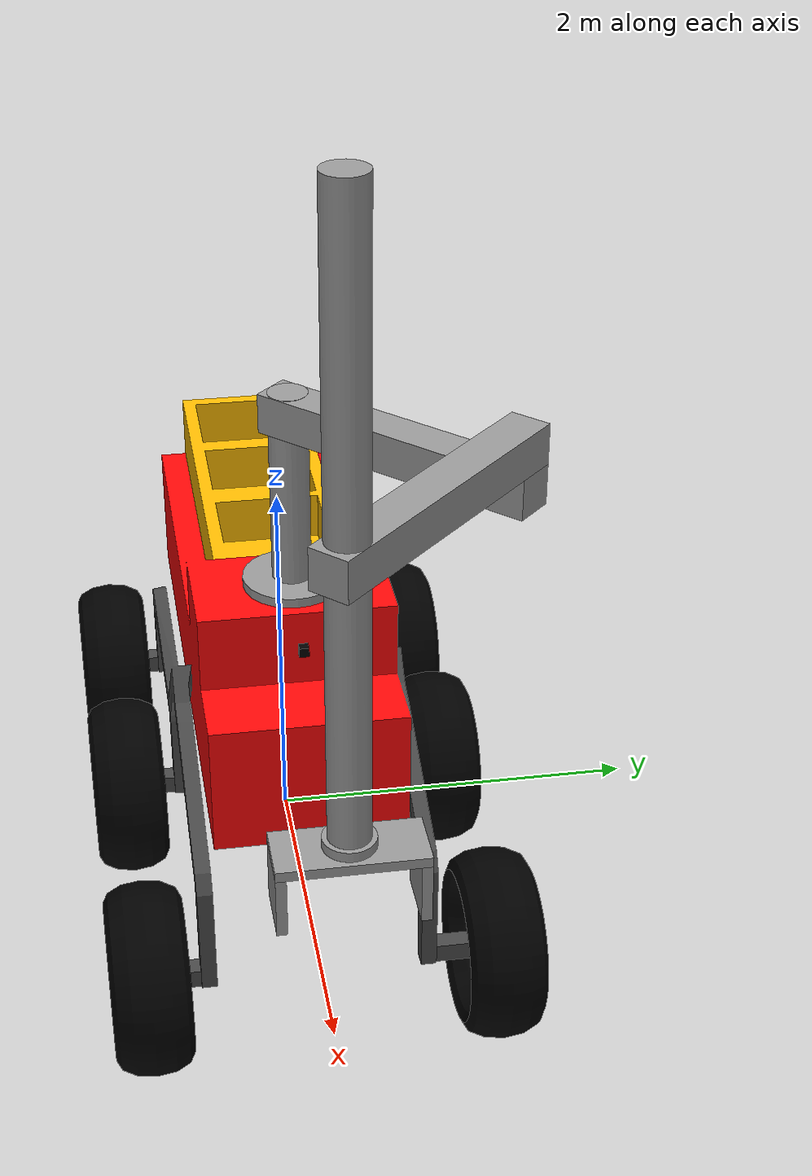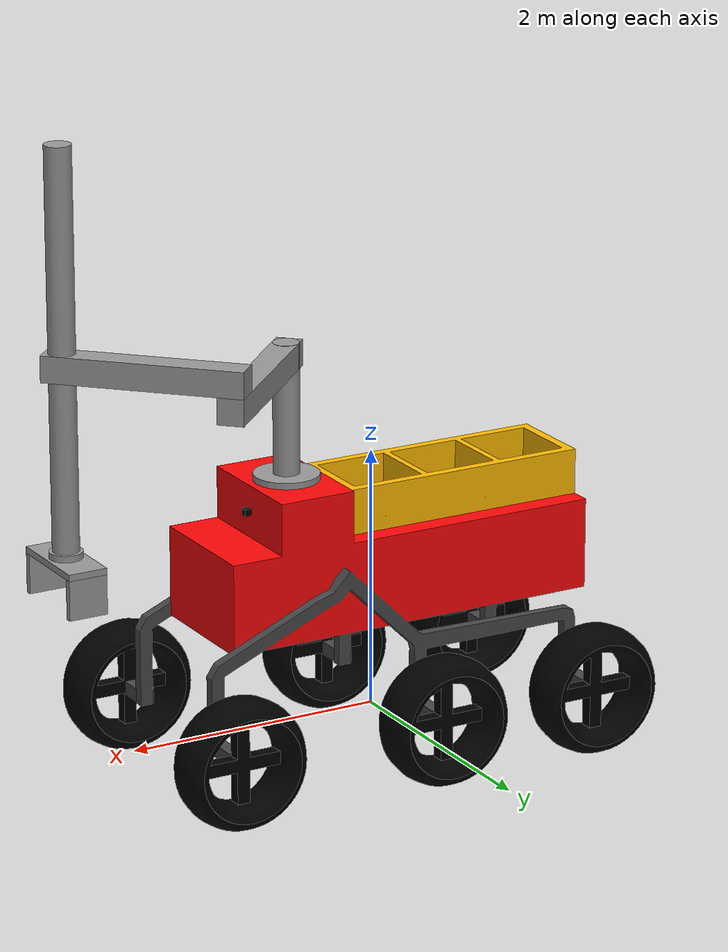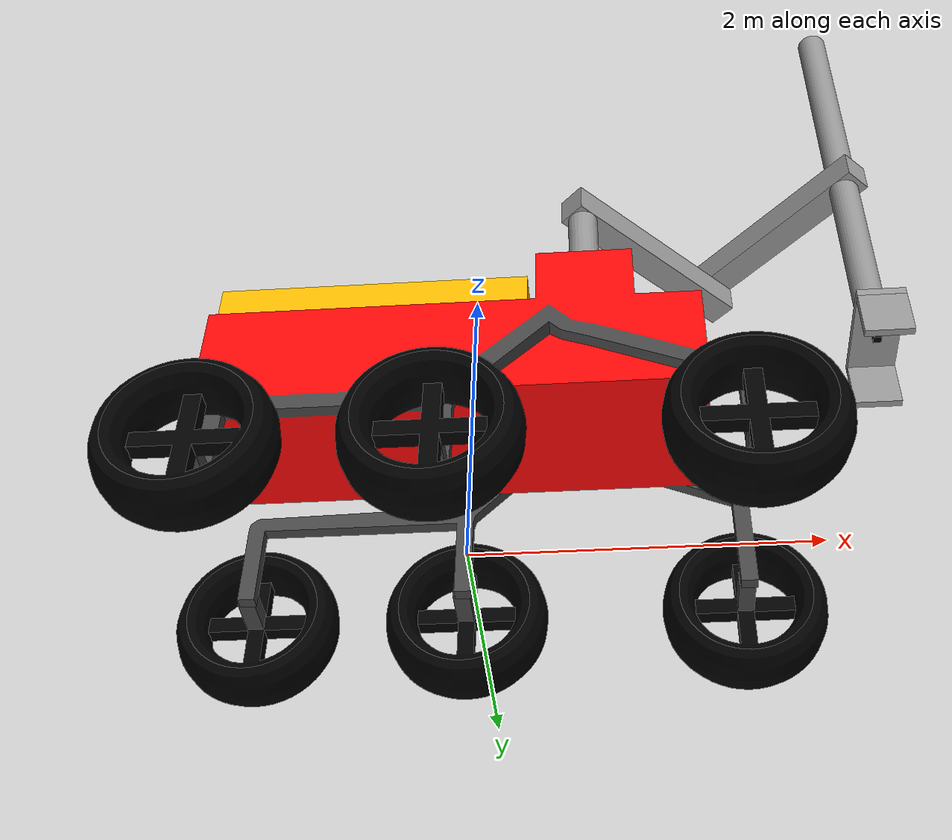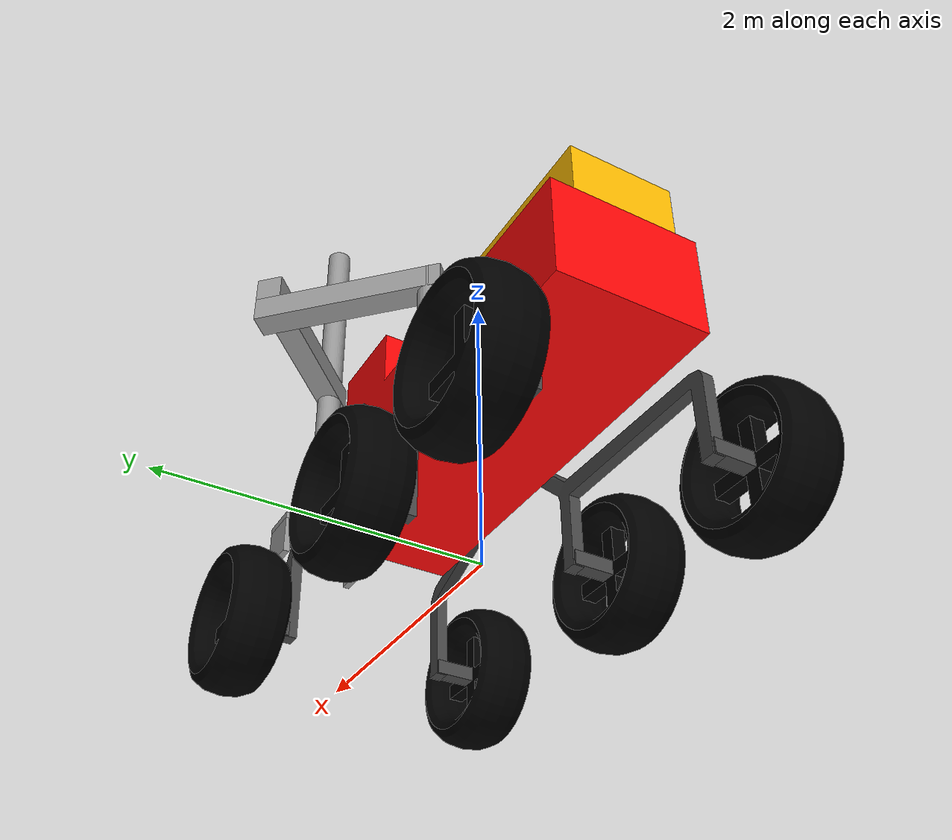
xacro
<?xml version="1.0"?>
<!-- created with Phobos 1.0.1 "Capricious Choutengan" -->
<robot name="robot" xmlns:xacro="http://wiki.ros.org/xacro">

  <xacro:include filename="$(find rover_description)/urdf/base/rover_base.urdf.xacro"/>
  <xacro:include filename="$(find rover_description)/urdf/base/envase.urdf.xacro"/>
  <xacro:include filename="$(find rover_description)/urdf/wheels/rover_wheel.urdf.xacro"/>
  <xacro:include filename="$(find rover_description)/urdf/wheels/axis.urdf.xacro"/>
  <xacro:include filename="$(find rover_description)/urdf/arm/arm.urdf.xacro"/>
  <xacro:include filename="$(find rover_description)/urdf/sensors/imu.urdf.xacro"/>
  <xacro:include filename="$(find rover_description)/urdf/sensors/camera.urdf.xacro"/>
  <xacro:include filename="$(find rover_description)/urdf/utils/arm_plugins.urdf.xacro" />
  <xacro:include filename="$(find rover_description)/urdf/utils/ros2_control.urdf.xacro" />

  <xacro:property name="Front_wheel_offset_x" value="1.6"/>
  <xacro:property name="Middle_wheel_offset_x" value="-0.1"/>
  <xacro:property name="Back_wheel_offset_x" value="-1.4"/>
  <xacro:property name="Axis_offset_y" value="0.70"/>
  <xacro:property name="Axis_offset_z" value="-1.05"/>
  <xacro:property name="Axis_to_wheel_offset_y" value="0.2"/>

  <!-- BASE -->
  <xacro:robot_base/>

  <!-- ENVASE -->
  <xacro:Envase parent="base_link">
    <origin rpy="0.0 0.0 0.0" xyz="-0.61197 -0.03002 0.34359"/>
  </xacro:Envase>

  <!-- AXIS -->
  <xacro:Axis prefix="front_right" parent="base_link">
    <origin xyz="${Front_wheel_offset_x} ${Axis_offset_y} ${Axis_offset_z}" rpy="0 0 0"/>
  </xacro:Axis>

  <xacro:Axis prefix="middle_right" parent="base_link">
    <origin xyz="${Middle_wheel_offset_x} ${Axis_offset_y} ${Axis_offset_z}" rpy="0 0 0"/>
  </xacro:Axis>

  <xacro:Axis prefix="back_right" parent="base_link">
    <origin xyz="${Back_wheel_offset_x} ${Axis_offset_y} ${Axis_offset_z}" rpy="0 0 0"/>
  </xacro:Axis>

  <xacro:Axis prefix="front_left" parent="base_link">
    <origin xyz="${Front_wheel_offset_x} -${Axis_offset_y} ${Axis_offset_z}" rpy="0 0 0"/>
  </xacro:Axis>

  <xacro:Axis prefix="middle_left" parent="base_link">
    <origin xyz="${Middle_wheel_offset_x} -${Axis_offset_y} ${Axis_offset_z}" rpy="0 0 0"/>
  </xacro:Axis>

  <xacro:Axis prefix="back_left" parent="base_link">
    <origin xyz="${Back_wheel_offset_x} -${Axis_offset_y} ${Axis_offset_z}" rpy="0 0 0"/>
  </xacro:Axis>

  <!-- WHEELS -->
  <xacro:rover_wheel prefix="front_right" parent="front_right_axis_link" mesh_file="Cube.006.dae">
    <origin xyz="0 ${Axis_to_wheel_offset_y} 0" rpy="${pi/2} 0 0"/>
  </xacro:rover_wheel>

  <xacro:rover_wheel prefix="middle_right" parent="middle_right_axis_link" mesh_file="Cube.006.dae">
    <origin xyz="0 ${Axis_to_wheel_offset_y} 0" rpy="${pi/2} 0 0"/>
  </xacro:rover_wheel>

  <xacro:rover_wheel prefix="back_right" parent="back_right_axis_link" mesh_file="Cube.006.dae">
    <origin xyz="0 ${Axis_to_wheel_offset_y} 0" rpy="${pi/2} 0 0"/>
  </xacro:rover_wheel>

  <xacro:rover_wheel prefix="front_left" parent="front_left_axis_link" mesh_file="Cube.008.dae">
    <origin xyz="0 -${Axis_to_wheel_offset_y} 0" rpy="${pi/2} 0 0"/>
  </xacro:rover_wheel>

  <xacro:rover_wheel prefix="middle_left" parent="middle_left_axis_link" mesh_file="Cube.008.dae">
    <origin xyz="0 -${Axis_to_wheel_offset_y} 0" rpy="${pi/2} 0 0"/>
  </xacro:rover_wheel>

  <xacro:rover_wheel prefix="back_left" parent="back_left_axis_link" mesh_file="Cube.008.dae">
    <origin xyz="0 -${Axis_to_wheel_offset_y} 0" rpy="${pi/2} 0 0"/>
  </xacro:rover_wheel>

  <!-- Fricción para ruedas izquierdas -->
  <gazebo reference="front_left_wheel_link"><mu1>0.1</mu1><mu2>0.1</mu2></gazebo>
  <gazebo reference="middle_left_wheel_link"><mu1>1.0</mu1><mu2>1.0</mu2></gazebo>
  <gazebo reference="back_left_wheel_link"><mu1>0.1</mu1><mu2>0.1</mu2></gazebo>

  <!-- Fricción para ruedas derechas -->
  <gazebo reference="front_right_wheel_link"><mu1>0.1</mu1><mu2>0.1</mu2></gazebo>
  <gazebo reference="middle_right_wheel_link"><mu1>1.0</mu1><mu2>1.0</mu2></gazebo>
  <gazebo reference="back_right_wheel_link"><mu1>0.1</mu1><mu2>0.1</mu2></gazebo>

  <!-- ARM -->
  <xacro:scara_arm parent="base_link">
    <origin xyz="0.71003 -0.01046 0.71815" rpy="0 0 0"/>
  </xacro:scara_arm>

  <!-- SENSORS -->
  <xacro:sensor_imu prefix="imu" parent="base_link">
    <!-- Aquí defines la posición física de la IMU respecto al parent -->
    <origin xyz="1.0 0.0 0.5" rpy="0 0 0"/>
  </xacro:sensor_imu>

  <xacro:sensor_camera
    frame_prefix="front"
    parent="base_link"
    horizontal_fov="90"
    video_width="640"
    video_height="480">
    <origin xyz="1.05 0 0.5" rpy="0 0 0"/>
  </xacro:sensor_camera>

  <xacro:sensor_camera
      frame_prefix="gripper"
      parent="base_gripper_link"
      horizontal_fov="60"
      video_width="640"
      video_height="480">
    <origin xyz="0 0 -0.05" rpy="0 1.5708 0"/>
  </xacro:sensor_camera>

  <!-- Controlador Gazebo ros2  -->
  <xacro:arg name="config_controllers" default="$(find rover_description)/config/rover_controllers.yaml"/>
  <xacro:arg name="update_rate" default="20"/>

  <!-- Esta es la llamada que activa todo el sistema de control -->
  <xacro:ros2_control/>

</robot>

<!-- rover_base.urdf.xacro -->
<robot xmlns:xacro="http://wiki.ros.org/xacro">

  <xacro:macro name="robot_base">

    <link name="base_footprint"/>

    <!-- Unión fija entre el suelo y el chasis -->
    <joint name="base_footprint_joint" type="fixed">
      <parent link="base_footprint"/>
      <child link="base_link"/>
      <origin xyz="0 0 1.2" rpy="0 0 0"/>
    </joint>

    <link name="base_link">
      <collision name="chasis_collision">
        <origin rpy="0.00000 0.00000 0.00000" xyz="0.05491 -0.59562 -0.76184"/>
        <geometry>
          <box size="3.20000 0.10000 0.90000"/>
        </geometry>
      </collision>
      <collision name="chasis_collision.001">
        <origin rpy="0.00000 0.00000 0.00000" xyz="-0.08278 -0.02106 -0.05185"/>
        <geometry>
          <box size="3.00000 1.00000 0.70000"/>
        </geometry>
      </collision>
      <collision name="chasis_collision.002">
        <origin rpy="0.00000 0.00000 0.00000" xyz="0.71391 -0.02883 0.49815"/>
        <geometry>
          <box size="0.60000 1.00000 0.40000"/>
        </geometry>
      </collision>
      <collision name="chasis_collision.003">
        <origin rpy="0.00000 0.00000 0.00000" xyz="0.05491 0.56235 -0.76184"/>
        <geometry>
          <box size="3.20000 0.10000 0.90000"/>
        </geometry>
      </collision>
      <inertial>
        <inertia ixx="155.51313" ixy="0.29579" ixz="-3.95758" iyy="456.61426" iyz="-0.74765" izz="404.59665"/>
        <origin rpy="0.00000 0.00000 0.00000" xyz="0.07609 -0.02047 -0.07797"/>
        <mass value="100.00000"/>
      </inertial>
      <visual name="chasis">
        <origin rpy="0.00000 -0.78540 0.00000" xyz="0.00000 0.00000 0.00000"/>
        <geometry>
          <mesh filename="file://$(find rover_description)/meshes/dae/Cube.011.dae" scale="0.05000 0.05250 0.05000"/>
        </geometry>
      </visual>
    </link>
  </xacro:macro>
</robot>

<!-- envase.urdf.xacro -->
<robot xmlns:xacro="http://wiki.ros.org/xacro">

  <xacro:macro name="Envase" params="parent *origin">

    <joint name="Envase_link_joint" type="fixed">
      <xacro:insert_block name="origin" />
      <parent link="${parent}"/>
      <child link="Envase_link"/>
    </joint>

    <link name="Envase_link">
      <collision name="envase_collision">
      <origin rpy="0.00000 0.00000 0.00000" xyz="-0.00388 0.31708 0.12258"/>
      <geometry>
        <box size="1.94000 0.07000 0.35000"/>
      </geometry>
      </collision>
      <collision name="envase_collision.001">
        <origin rpy="0.00000 0.00000 0.00000" xyz="-0.00388 -0.30814 0.12258"/>
        <geometry>
          <box size="1.94000 0.07000 0.35000"/>
        </geometry>
      </collision>
      <collision name="envase_collision.002">
        <origin rpy="0.00000 0.00000 0.00000" xyz="-0.93970 0.00532 0.12258"/>
        <geometry>
          <box size="0.07000 0.55000 0.35000"/>
        </geometry>
      </collision>
      <collision name="envase_collision.003">
        <origin rpy="0.00000 0.00000 0.00000" xyz="-0.32024 0.00532 0.12258"/>
        <geometry>
          <box size="0.05000 0.55000 0.35000"/>
        </geometry>
      </collision>
      <collision name="envase_collision.004">
        <origin rpy="0.00000 0.00000 0.00000" xyz="0.30432 0.00532 0.12258"/>
        <geometry>
          <box size="0.05000 0.55000 0.35000"/>
        </geometry>
      </collision>
      <collision name="envase_collision.005">
        <origin rpy="0.00000 0.00000 0.00000" xyz="0.93254 0.00532 0.12258"/>
        <geometry>
          <box size="0.07000 0.55000 0.35000"/>
        </geometry>
      </collision>
      <inertial>
        <inertia ixx="1.39088" ixy="-0.00000" ixz="0.00231" iyy="9.35663" iyz="0.00000" izz="10.27551"/>
        <origin rpy="0.00000 0.00000 0.00000" xyz="-0.00182 0.00000 0.14544"/>
        <mass value="30.00000"/>
      </inertial>
      <visual name="Envase">
        <origin rpy="0.00000 0.00000 0.00000" xyz="0.00000 0.00471 0.00000"/>
        <geometry>
          <mesh filename="file://$(find rover_description)/meshes/dae/Cube.020.dae" scale="0.97000 0.35000 0.05000"/>
        </geometry>
      </visual>
    </link>
  </xacro:macro>
</robot>

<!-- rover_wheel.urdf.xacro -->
<robot xmlns:xacro="http://wiki.ros.org/xacro">

  <xacro:macro name="rover_wheel" params="prefix parent mesh_file *origin">

    <joint name="${prefix}_wheel_joint" type="continuous">
      <xacro:insert_block name="origin" />
      <parent link="${parent}"/>
      <child link="${prefix}_wheel_link"/>
      <axis xyz="0 0 -1"/> <limit effort="500.0" velocity="10.0"/>
    </joint>

    <link name="${prefix}_wheel_link">
      <visual name="${prefix}_visual">
        <origin rpy="-1.57080 0.00000 0.00000" xyz="0.00000 0.00000 0.00000"/>
        <geometry>
          <mesh filename="file://$(find rover_description)/meshes/dae/${mesh_file}" scale="0.05000 0.05000 0.12500"/>
        </geometry>
      </visual>

      <collision name="${prefix}_collision">
        <origin rpy="-1.57080 0.00000 0.00000" xyz="0.00000 0.00000 0.00000"/>
        <geometry>
          <mesh filename="file://$(find rover_description)/meshes/dae/${mesh_file}" scale="0.05000 0.05000 0.12500"/>
        </geometry>
      </collision>

      <inertial>
        <mass value="20.0"/>
        <origin rpy="0 0 0" xyz="0 0 0.00008"/>
        <inertia ixx="1.29049" ixy="0.0" ixz="0.0" iyy="2.27308" iyz="0.0" izz="1.29044"/>
      </inertial>
    </link>

    <gazebo reference="${prefix}_wheel_link">
      <mu1>0.01</mu1>
      <mu2>0.01</mu2>
      <kp>1000000.0</kp>
      <kd>100.0</kd>
      <minDepth>0.001</minDepth>
      <maxVel>0.1</maxVel>
      <fdir1>1 0 0</fdir1>
    </gazebo>

  </xacro:macro>
</robot>

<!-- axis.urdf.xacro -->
<robot xmlns:xacro="http://wiki.ros.org/xacro">

  <xacro:macro name="Axis" params="prefix parent *origin">
  <joint name="${prefix}_Axis_link_joint" type="fixed">
    <xacro:insert_block name="origin" />
    <parent link="${parent}"/>
    <child link="${prefix}_axis_link"/>
  </joint>

  <link name="${prefix}_axis_link">
    <collision name="${prefix}_axis_collision">
      <origin rpy="0.00000 0.00000 0.00000" xyz="0.00000 0.00000 0.00000"/>
      <geometry>
        <mesh filename="package://rover_description/meshes/dae/Cube.001.dae" scale="0.05000 0.13500 0.05000"/>
      </geometry>
    </collision>
    <inertial>
      <inertia ixx="0.03454" ixy="0.00000" ixz="0.00000" iyy="0.00833" iyz="0.00000" izz="0.03454"/>
      <origin rpy="0.00000 0.00000 0.00000" xyz="0.00000 0.00000 0.00000"/>
      <mass value="5.00000"/>
    </inertial>
    <visual name="${prefix}_axis_visual">
      <material name="Material.014"/>
      <origin rpy="0.00000 0.00000 0.00000" xyz="0.00000 0.00000 0.00000"/>
      <geometry>
        <box size="0.10000 0.27000 0.10000"/>
      </geometry>
    </visual>
  </link>

  </xacro:macro>

  <material name="Material.014">
    <color rgba="0.28235 0.28235 0.28235 1.00000"/>
  </material>
</robot>

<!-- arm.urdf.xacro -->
<robot xmlns:xacro="http://wiki.ros.org/xacro">

  <xacro:macro name="scara_arm" params="parent *origin">

    <joint name="scara_base_link_joint" type="fixed">
      <xacro:insert_block name="origin" />
      <parent link="${parent}"/>
      <child link="scara_base_link"/>
    </joint>

    <link name="scara_base_link">
      <inertial>
        <inertia ixx="0.07917" ixy="0.00000" ixz="0.00000" iyy="0.07917" iyz="0.00000" izz="0.15625"/>
        <origin rpy="0 0 0" xyz="0 0 0"/>
        <mass value="5.0"/>
      </inertial>
      <collision name="scara_base_collision">
        <geometry>
          <cylinder radius="0.25" length="0.05"/>
        </geometry>
      </collision>
      <visual name="scara_base">
        <material name="Material.007"/>
        <geometry>
          <cylinder radius="0.25" length="0.05"/>
        </geometry>
      </visual>
    </link>

    <!-- Articulación 1: Rotación Hombro -->
    <joint name="scara_arm_1_link_joint" type="revolute">
      <limit lower="-2.27" upper="4.17" effort="1000.0" velocity="10.0" acceleration="5.0"/>
      <origin xyz="0.0 0.0 0.52512" rpy="0 0 0"/>
      <parent link="scara_base_link"/>
      <child link="scara_arm_1_link"/>
      <axis xyz="0 0 1"/>
    </joint>

    <link name="scara_arm_1_link">
      <inertial>
        <inertia ixx="0.42083" ixy="0.0" ixz="0.0" iyy="0.42083" iyz="0.0" izz="0.025"/>
        <origin rpy="0 0 0" xyz="0 0 0"/>
        <mass value="5.0"/>
      </inertial>
      <collision>
        <geometry>
          <cylinder radius="0.1" length="1.0"/>
        </geometry>
      </collision>
      <visual>
        <material name="Material.007"/>
        <geometry>
          <cylinder radius="0.1" length="1.0"/>
        </geometry>
      </visual>
    </link>

    <joint name="scara_arm_2_link_joint" type="fixed">
      <origin xyz="0.45675 0.45526 0.39791" rpy="0 0 -0.7854"/>
      <parent link="scara_arm_1_link"/>
      <child link="scara_arm_2_link"/>
    </joint>

    <link name="scara_arm_2_link">
      <inertial>
        <inertia ixx="0.95417" ixy="0.0" ixz="0.0" iyy="0.03333" iyz="0.0" izz="0.95417"/>
        <origin rpy="0 0 0" xyz="0 0 0"/>
        <mass value="5.0"/>
      </inertial>
      <collision>
        <geometry>
          <box size="0.2 1.5 0.2"/>
        </geometry>
      </collision>
      <visual>
        <material name="Material.007"/>
        <geometry>
          <box size="0.2 1.5 0.2"/>
        </geometry>
      </visual>
    </link>

    <!-- Articulación 3: Rotación Codo -->
    <joint name="scara_arm_3_link_joint" type="revolute">
      <limit lower="-1.2" upper="4.3" effort="1000.0" velocity="10.0" acceleration="5.0"/>
      <origin xyz="0.0 0.64991 0.2" rpy="0 0 0"/>
      <parent link="scara_arm_2_link"/>
      <child link="scara_arm_3_link"/>
      <axis xyz="0 0 1"/>
    </joint>

    <link name="scara_arm_3_link">
      <inertial>
        <inertia ixx="0.03333" ixy="0.0" ixz="0.0" iyy="0.95417" iyz="0.0" izz="0.95417"/>
        <origin rpy="0 0 0" xyz="0.65015 0 0"/>
        <mass value="5.0"/>
      </inertial>
      <collision>
        <origin xyz="0.65015 0 0"/>
        <geometry>
          <box size="1.5 0.2 0.2"/>
        </geometry>
      </collision>
      <visual>
        <origin xyz="0.65015 0 0"/>
        <material name="Material.007"/>
        <geometry>
          <box size="1.5 0.2 0.2"/>
        </geometry>
      </visual>
    </link>

    <!-- Articulación 4: Rotación Muñeca -->
    <joint name="Cylinder_rotational_joint" type="revolute">
      <limit lower="-3.14" upper="3.14" effort="1000.0" velocity="10.0" acceleration="5.0"/>
      <origin xyz="1.26955 0 1.51933" rpy="0 0 0.7854"/>
      <parent link="scara_arm_3_link"/>
      <child link="Cylinder_link"/>
      <axis xyz="0 0 1"/>
    </joint>

    <link name="Cylinder_link">
      <inertial>
        <mass value="0.01"/>
        <origin xyz="0 0 0" rpy="0 0 0"/>
        <inertia ixx="0.0001" ixy="0" ixz="0" iyy="0.0001" iyz="0" izz="0.0001"/>
      </inertial>
    </link>

    <!-- Articulación 5: Movimiento Vertical (Prismático) -->
    <joint name="Cylinder_vertical_joint" type="prismatic">
      <limit lower="-1.5" upper="1.1" effort="1000.0" velocity="10.0" acceleration="2.0"/>
      <origin xyz="0 0 -1.39867" rpy="0 0 0"/>
      <parent link="Cylinder_link"/>
      <child link="cylinder_link_001"/>
      <axis xyz="0 0 1"/>
    </joint>

    <link name="cylinder_link_001">
      <inertial>
        <inertia ixx="0.9401" ixy="0.0" ixz="0.0" iyy="0.9401" iyz="0.0" izz="0.0125"/>
        <origin rpy="0 0 0" xyz="0 0 0.003"/>
        <mass value="5.0"/>
      </inertial>
      <collision>
        <geometry>
          <mesh filename="file://$(find rover_description)/meshes/dae/Cylinder.002.dae" scale="0.1 0.1 1.5"/>
        </geometry>
      </collision>
      <visual>
        <material name="Material.007"/>
        <geometry>
          <mesh filename="file://$(find rover_description)/meshes/dae/Cylinder.002.dae" scale="0.1 0.1 1.5"/>
        </geometry>
      </visual>
    </link>

    <joint name="base_gripper_joint" type="fixed">
      <origin xyz="0 0 -1.57568" rpy="0 0 0"/>
      <parent link="cylinder_link_001"/>
      <child link="base_gripper_link"/>
    </joint>

    <link name="base_gripper_link">
      <inertial>
        <inertia ixx="0.20521" ixy="0.0" ixz="0.0" iyy="0.03854" iyz="0.0" izz="0.24167"/>
        <origin rpy="0 0 0" xyz="0 0 0"/>
        <mass value="5.0"/>
      </inertial>
      <collision>
        <geometry>
          <box size="0.3 0.7 0.05"/>
        </geometry>
      </collision>
      <visual>
        <material name="Material.007"/>
        <geometry>
          <box size="0.3 0.7 0.05"/>
        </geometry>
      </visual>
    </link>

    <!-- Articulación 6: Dedo Izquierdo -->
    <joint name="left_grip_joint" type="prismatic">
      <limit lower="0.0" upper="0.07" effort="1000.0" velocity="10.0" acceleration="2.0"/>
      <origin xyz="0 -0.325 -0.17515" rpy="0 0 0"/>
      <parent link="base_gripper_link"/>
      <child link="left_grip_link"/>
      <axis xyz="0 1 0"/>
    </joint>

    <link name="left_grip_link">
      <inertial>
        <inertia ixx="0.03854" ixy="0.0" ixz="0.0" iyy="0.03854" iyz="0.0" izz="0.075"/>
        <origin rpy="0 0 0" xyz="0 0 0"/>
        <mass value="2.0"/>
      </inertial>
      <collision>
        <geometry>
          <box size="0.3 0.05 0.3"/>
        </geometry>
      </collision>
      <visual>
        <material name="Material.007"/>
        <geometry>
          <box size="0.3 0.05 0.3"/>
        </geometry>
      </visual>
    </link>

    <!-- Articulación 7: Dedo Derecho -->
    <joint name="right_grip_joint" type="prismatic">
      <limit lower="-0.07" upper="0.0" effort="1000.0" velocity="10.0" acceleration="2.0"/>
      <origin xyz="0 0.3248 -0.17515" rpy="0 0 0"/>
      <parent link="base_gripper_link"/>
      <child link="right_grip_link"/>
      <axis xyz="0 1 0"/>
    </joint>

    <link name="right_grip_link">
      <inertial>
        <inertia ixx="0.03854" ixy="0.0" ixz="0.0" iyy="0.03854" iyz="0.0" izz="0.075"/>
        <origin rpy="0 0 0" xyz="0 0 0"/>
        <mass value="2.0"/>
      </inertial>
      <collision>
        <geometry>
          <box size="0.3 0.05 0.3"/>
        </geometry>
      </collision>
      <visual>
        <material name="Material.007"/>
        <geometry>
          <box size="0.3 0.05 0.3"/>
        </geometry>
      </visual>
    </link>

  </xacro:macro>

  <material name="Material.007">
    <color rgba="0.6 0.6 0.6 1.0"/>
  </material>

</robot>

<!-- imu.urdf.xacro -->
<robot name="imu_sensor" xmlns:xacro="http://wiki.ros.org/xacro">

  <!-- ######### IMU ######### -->
  <xacro:macro name="sensor_imu" params="prefix ns:='' topic:='imu/data' parent *origin">

    <joint name="${prefix}_joint" type="fixed">
      <xacro:insert_block name="origin" />
      <parent link="${parent}"/>
      <child link="${prefix}_link"/>
    </joint>

    <link name="${prefix}_link">
      <inertial>
        <origin xyz="0.0 0.0 0.01" rpy="0 0 0" />
        <mass value="0.005" />
        <inertia ixx="0.0001" ixy="0" ixz="0" iyy="0.0001" iyz="0" izz="0.0001"/>
      </inertial>
      <visual>
        <origin rpy="0 0 0" xyz="0 0 0" />
        <geometry>
          <box size="0.001 0.001 0.001" />
        </geometry>
      </visual>
    </link>

    <gazebo reference="${prefix}_link">
      <sensor name="${prefix}_sensor" type="imu">
        <always_on>1</always_on>
        <update_rate>30</update_rate>
        <visualize>true</visualize>
        <topic>${topic}</topic>
        <!-- ESTO ES LO QUE TE FALTA: El puente con ROS 2 -->
        <plugin name="${prefix}_imu_plugin" filename="libgazebo_ros_imu_sensor.so">
          <ros>
            <namespace>${ns}</namespace>
            <remapping>~/out:=${topic}</remapping>
          </ros>
        </plugin>
      </sensor>
    </gazebo>

  </xacro:macro>
</robot>

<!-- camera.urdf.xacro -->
<robot xmlns:xacro="http://wiki.ros.org/xacro">

  <xacro:macro name="sensor_camera" params="frame_prefix parent horizontal_fov video_width video_height *origin">

    <joint name="${frame_prefix}_camera_joint" type="fixed">
      <xacro:insert_block name="origin" />
      <parent link="${parent}"/>
      <child link="${frame_prefix}_camera_frame"/>
    </joint>

    <link name="${frame_prefix}_camera_frame">
      <visual>
        <geometry>
          <box size="0.05 0.05 0.05"/>
        </geometry>
        <material name="black">
          <color rgba="0 0 0 1"/>
        </material>
      </visual>
      <inertial>
        <mass value="0.01"/>
        <origin xyz="0 0 0" rpy="0 0 0"/>
        <inertia ixx="0.0001" ixy="0" ixz="0" iyy="0.0001" iyz="0" izz="0.0001"/>
      </inertial>
    </link>

    <gazebo reference="${frame_prefix}_camera_frame">
      <sensor name="${frame_prefix}_sensor" type="camera">
        <visualize>true</visualize>
        <update_rate>30</update_rate>
        <topic>/${frame_prefix}/image</topic>
        <camera>
          <horizontal_fov>${radians(float(horizontal_fov))}</horizontal_fov>
          <image>
            <width>${video_width}</width>
            <height>${video_height}</height>
            <format>R8G8B8</format>
          </image>
          <clip>
            <near>0.10</near>
            <far>15.0</far>
          </clip>
          <noise>
            <type>gaussian</type>
            <mean>0.0</mean>
            <stddev>0.007</stddev>
          </noise>
          <optical_frame_id>${frame_prefix}_camera_frame</optical_frame_id>
        </camera>
      </sensor>
    </gazebo>

  </xacro:macro>
</robot>
